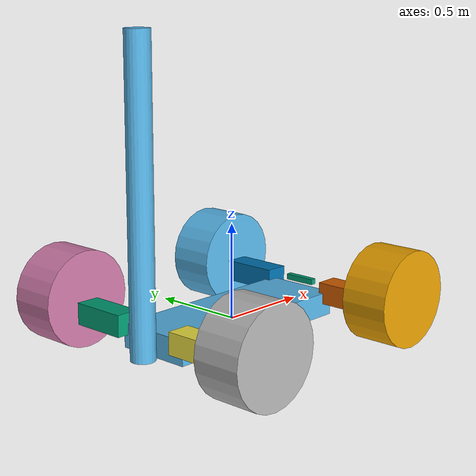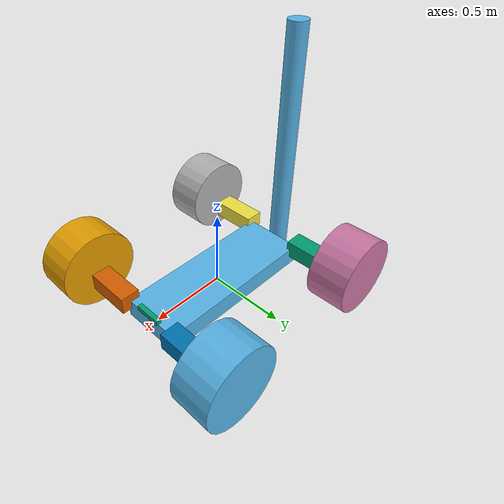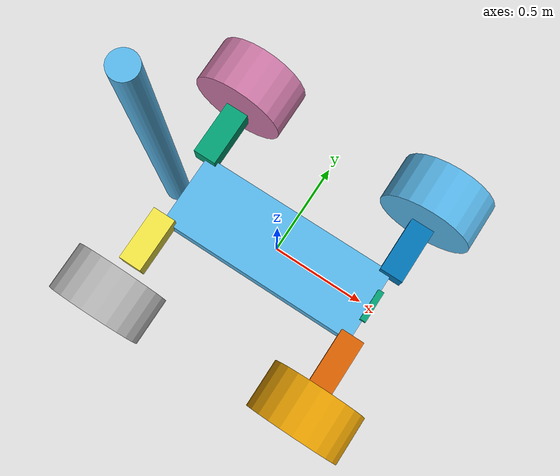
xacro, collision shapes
<?xml version='1.0'?>

<!-- choose a name space and start xacro -->
<robot name="auto_mode" xmlns:xacro="http://www.ros.org/wiki/xacro">

  <!-- Start by including all required xacro files which hold the macros -->
  <xacro:include filename="$(find sim_world)/models/common_models/common_models.xacro" />
  <xacro:include filename="$(find sim_world)/models/auto_mode/auto_mode.gazebo" />
  <xacro:include filename="$(find sim_world)/models/auto_mode/materials.xacro" />
  <xacro:include filename="$(find sim_world)/models/auto_mode/macros.xacro"    />
  <xacro:include filename="$(find sim_world)/models/auto_mode/parameter.xacro" />

  <!-- Add the ZED camera -->
  <link name="zed_cam_link">

    <inertial>
      <mass value="${m_zed_cam}"/>
      <xacro:box_inertia m="${m_zed_cam}" x="${x_zed_cam}" y="${y_zed_cam}" z="${z_zed_cam}"/>
    </inertial>

    <collision name="collision">
      <origin xyz="${x_pose_zed_cam} 0 ${z_pose_zed_cam}" rpy="0 0 ${pi/2}"/>
      <geometry>
        <box size="${x_zed_cam} ${y_zed_cam} ${z_zed_cam}"/>
      </geometry>
    </collision>

    <visual name="zed_cam_visual">
      <origin xyz="${x_pose_zed_cam} 0 ${z_pose_zed_cam}" rpy="0 0 ${pi/2}"/>
      <geometry>
        <box size="${x_zed_cam} ${y_zed_cam} ${z_zed_cam}"/>
      </geometry>
    </visual>

  </link>

  <!-- Fix ZED camera to chassis -->
  <joint type="fixed" name="chassis_to_zed_cam">
    <parent link="chassis_link"/>
    <child link="zed_cam_link"/>
  </joint>
</robot>

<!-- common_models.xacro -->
<!-- choose a name space and start xacro -->
<robot name="common_models" xmlns:xacro="http://www.ros.org/wiki/xacro">

  <!-- Start by including all required xacro files which hold the macros -->
  <xacro:include filename="$(find sim_world)/models/common_models/common_models.gazebo" />
  <xacro:include filename="$(find sim_world)/models/common_models/materials.xacro" />
  <xacro:include filename="$(find sim_world)/models/common_models/macros.xacro"    />
  <xacro:include filename="$(find sim_world)/models/common_models/parameter.xacro" />

 <!-- Create a dummy link as base link -->
  <link name='base_link'>
    <pose>0 0 0 0 0 0</pose>
  </link>
  <joint type="fixed" name="base_link_to_chassis">
    <child link="chassis_link"/>
    <parent link="base_link"/>
  </joint>

  <!-- Define the chassis of the differential drive robot, which is our base -->
  <link name='chassis_link'>
    <pose>0 0 0 0 0 0</pose>
    <!-- Define inertial system for the chassis -->
    <inertial>
      <mass value="${m_chassis}"/>
      <xacro:box_inertia m="${m_chassis}" x="${x_chassis}" y="${y_chassis}" z="${z_chassis}"/>
    </inertial>
    <!-- Define collision sorrounding box -->
    <collision name='collision'>
      <origin xyz="0 0 0" rpy=" 0 0 0"/>
      <geometry>
        <box size="${x_chassis} ${y_chassis} ${z_chassis}"/>
      </geometry>
    </collision>
    <!-- Define visualization structure -->
    <visual name='base_link_visual'>
	  <origin xyz="0 0 0" rpy=" 0 0 0"/>
      <geometry>
        <mesh filename="package://sim_world/meshes/chassis-w-baseplate.dae"/>
      </geometry>
    </visual>

    <!-- Add the caster wheel! Here we simply assume complete slippage, thus we do not require that it rotates! -->

    <!-- Add antenna to the rover -->
    <collision name="antenna">
      <origin xyz="${-x_chassis/2-r_antenna} 0 ${l_antenna/2-z_chassis/2}" rpy="0 0 0"/>
      <geometry>
        <cylinder radius="${r_antenna}" length="${l_antenna}"/>
      </geometry>
    </collision>

    <visual name="antenna_visual">
      <origin xyz="${-x_chassis/2-r_antenna} 0 ${l_antenna/2-z_chassis/2}" rpy="0 0 0"/>
      <geometry>
        <cylinder radius="${r_antenna}" length="${l_antenna}"/>
      </geometry>
    </visual>

  </link>

  <!-- Add legs for the robot -->
  <link name="leg_rl">
    <inertial>
      <mass value="${m_leg}"/>
      <xacro:box_inertia m="${m_leg}" x="${l_leg}" y="${w_leg}" z="${h_leg}"/>
    </inertial>
    <collision name="collision">
      <origin xyz="0 0 0" rpy="0 0 ${pi/2}"/>
      <geometry>
        <box size="${l_leg} ${w_leg} ${h_leg}"/>
      </geometry>
    </collision>
    <visual name="leg_rl_visual">
      <origin xyz="0 0 0" rpy="0 0 ${pi/2}"/>
      <geometry>
        <mesh filename="package://sim_world/meshes/tr_leg.dae"/>
      </geometry>
    </visual>
  </link>

  <link name="leg_rr">
    <inertial>
      <mass value="${m_leg}"/>
      <xacro:box_inertia m="${m_leg}" x="${l_leg}" y="${w_leg}" z="${h_leg}"/>
    </inertial>
    <collision name="collision">
      <origin xyz="0 0 0" rpy="0 0 ${pi/2}"/>
      <geometry>
        <box size="${l_leg} ${w_leg} ${h_leg}"/>
      </geometry>
    </collision>
    <visual name="leg_rr_visual">
      <origin xyz="0 0 0" rpy="0 0 ${pi/2}"/>
      <geometry>
        <mesh filename="package://sim_world/meshes/tr_leg.dae"/>
      </geometry>
    </visual>
  </link>

  <link name="leg_fl">
    <inertial>
      <mass value="${m_leg}"/>
      <xacro:box_inertia m="${m_leg}" x="${l_leg}" y="${w_leg}" z="${h_leg}"/>
    </inertial>
    <collision name="collision">
      <origin xyz="0 0 0" rpy="0 0 ${pi/2}"/>
      <geometry>
        <box size="${l_leg} ${w_leg} ${h_leg}"/>
      </geometry>
    </collision>
    <visual name="leg_fl_visual">
      <origin xyz="0 0 0" rpy="0 0 ${pi/2}"/>
      <geometry>
        <mesh filename="package://sim_world/meshes/Control_armsFL.dae"/>
      </geometry>
    </visual>
  </link>

  <link name="leg_fr">
    <inertial>
      <mass value="${m_leg}"/>
      <xacro:box_inertia m="${m_leg}" x="${l_leg}" y="${w_leg}" z="${h_leg}"/>
    </inertial>
    <collision name="collision">
      <origin xyz="0 0 0" rpy="0 0 ${pi/2}"/>
      <geometry>
        <box size="${l_leg} ${w_leg} ${h_leg}"/>
      </geometry>
    </collision>
    <visual name="leg_fr_visual">
      <origin xyz="0 0 0" rpy="0 0 ${pi/2}"/>
      <geometry>
        <mesh filename="package://sim_world/meshes/Control_armsFRv2.dae"/>
      </geometry>
    </visual>
  </link>

  <!-- Add the wheels for the robot -->
  <link name="wheel_rl">
    <collision name="collision">
      <origin xyz="0 0 0" rpy="0 ${pi/2} ${pi/2}"/>
      <geometry>
        <cylinder radius="${r_wheel}" length="${h_wheel}"/>
      </geometry>
      <surface>
        <friction>
          <ode>
            <mu>1.0</mu>
            <mu2>1.0</mu2>
            <slip1>0.0</slip1>
            <slip2>0.0</slip2>
          </ode>
        </friction>
      </surface>
    </collision>
    <visual name="wheel_rl_visual">
      <origin xyz="0 0 0" rpy="0 ${pi/2} ${pi/2}"/>
      <geometry>
        <mesh filename="package://sim_world/meshes/tr_wheel_left.dae"/>
      </geometry>
    </visual>
    <inertial>
      <origin xyz="0 0 0" rpy="0 ${pi/2} ${pi/2}"/>
      <mass value="${m_wheel}"/>
      <cylinder_inertia m="${m_wheel}" r="${r_wheel}" h="${h_wheel}"/>
      <xacro:cylinder_inertia m="${m_wheel}" r="${r_wheel}" h="${h_wheel}"/>
    </inertial>
  </link>

  <link name="wheel_rr">
    <collision name="collision">
      <origin xyz="0 0 0" rpy="0 ${pi/2} ${pi/2}"/>
      <geometry>
        <cylinder radius="${r_wheel}" length="${h_wheel}"/>
      </geometry>
      <surface>
        <friction>
          <ode>
            <mu>1.0</mu>
            <mu2>1.0</mu2>
            <slip1>0.0</slip1>
            <slip2>0.0</slip2>
          </ode>
        </friction>
      </surface>
    </collision>
    <visual name="wheel_rr_visual">
      <origin xyz="0 0 0" rpy="0 ${pi/2} ${pi/2}"/>
      <geometry>
        <mesh filename="package://sim_world/meshes/tr_wheel_right.dae"/>
      </geometry>
    </visual>
    <inertial>
      <origin xyz="0 0 0" rpy="0 ${pi/2} ${pi/2}"/>
      <mass value="${m_wheel}"/>
      <cylinder_inertia m="${m_wheel}" r="${r_wheel}" h="${h_wheel}"/>
      <xacro:cylinder_inertia m="${m_wheel}" r="${r_wheel}" h="${h_wheel}"/>
    </inertial>
  </link>

  <link name="wheel_fr">
    <collision name="collision">
      <origin xyz="0 0 0" rpy="0 ${pi/2} ${pi/2}"/>
      <geometry>
        <cylinder radius="${r_wheel}" length="${h_wheel}"/>
      </geometry>
      <surface>
        <friction>
          <ode>
            <mu>1.0</mu>
            <mu2>1.0</mu2>
            <slip1>0.0</slip1>
            <slip2>0.0</slip2>
          </ode>
        </friction>
      </surface>
    </collision>
    <visual name="wheel_fr_visual">
      <origin xyz="0 0 0" rpy="0 ${pi/2} ${pi/2}"/>
      <geometry>
        <mesh filename="package://sim_world/meshes/tr_wheel_right.dae"/>
      </geometry>
    </visual>
    <inertial>
      <origin xyz="0 0 0" rpy="0 ${pi/2} ${pi/2}"/>
      <mass value="${m_wheel}"/>
      <cylinder_inertia m="${m_wheel}" r="${r_wheel}" h="${h_wheel}"/>
      <xacro:cylinder_inertia m="${m_wheel}" r="${r_wheel}" h="${h_wheel}"/>
    </inertial>
  </link>

  <link name="wheel_fl">
    <collision name="collision">
      <origin xyz="0 0 0" rpy="0 ${pi/2} ${pi/2}"/>
      <geometry>
        <cylinder radius="${r_wheel}" length="${h_wheel}"/>
      </geometry>
      <surface>
        <friction>
          <ode>
            <mu>1.0</mu>
            <mu2>1.0</mu2>
            <slip1>0.0</slip1>
            <slip2>0.0</slip2>
          </ode>
        </friction>
      </surface>
    </collision>
    <visual name="wheel_fl_visual">
      <origin xyz="0 0 0" rpy="0 ${pi/2} ${pi/2}"/>
      <geometry>
        <mesh filename="package://sim_world/meshes/tr_wheel_left.dae"/>
      </geometry>
    </visual>
    <inertial>
      <origin xyz="0 0 0" rpy="0 ${pi/2} ${pi/2}"/>
      <mass value="${m_wheel}"/>
      <cylinder_inertia m="${m_wheel}" r="${r_wheel}" h="${h_wheel}"/>
      <xacro:cylinder_inertia m="${m_wheel}" r="${r_wheel}" h="${h_wheel}"/>
    </inertial>
  </link>

  <!-- Set joints for the wheels which can be controlled over ROS -->
  <!-- it is continuous since it is a wheel-->
  <joint type="continuous" name="leg_rl_joint_wheel_rl">
    <origin xyz="0 ${l_leg/2+h_wheel/2} ${r_wheel/2-z_chassis/2}" rpy="0 0 0"/>
    <child link="wheel_rl"/>
    <parent link="leg_rl"/>
    <axis xyz="0 1 0" rpy="0 0 0"/>
    <!-- velocity here is the max allowed velocity not the acutal velocity-->
    <limit effort="100" velocity="100"/>
    <joint_properties damping="0.0" friction="0.0"/>
  </joint>
  <joint type="continuous" name="leg_rr_joint_wheel_rr">
    <origin xyz="0 ${-y_chassis/2-h_wheel/2} ${r_wheel/2-z_chassis/2}" rpy="0 0 0"/>
    <child link="wheel_rr"/>
    <parent link="leg_rr"/>
    <axis xyz="0 1 0" rpy="0 0 0"/>
    <limit effort="100" velocity="100"/>
    <joint_properties damping="0.0" friction="0.0"/>
  </joint>
  <joint type="continuous" name="leg_fr_joint_wheel_fr">
    <origin xyz="0 ${-l_leg/2-h_wheel/2} ${r_wheel/2-z_chassis/2}" rpy="0 0 0"/>
    <child link="wheel_fr"/>
    <parent link="leg_fr"/>
    <axis xyz="0 1 0" rpy="0 0 0"/>
    <limit effort="100" velocity="100"/>
    <joint_properties damping="0.0" friction="0.0"/>
  </joint>
  <joint type="continuous" name="leg_fl_joint_wheel_fl">
    <origin xyz="0 ${l_leg/2+h_wheel/2} ${r_wheel/2-z_chassis/2}" rpy="0 0 0"/>
    <child link="wheel_fl"/>
    <parent link="leg_fl"/>
    <axis xyz="0 1 0" rpy="0 0 0"/>
    <limit effort="100" velocity="100"/>
    <joint_properties damping="0.0" friction="0.0"/>
  </joint>

   <joint type="revolute" name="chassis_link_joint_leg_rl">
    <origin xyz="${-wheel_dist_center} ${y_chassis/2+h_wheel/2} ${r_wheel/2-z_chassis/2}" rpy="0 0 0"/>
    <child link="leg_rl"/>
    <parent link="chassis_link"/>
    <axis xyz="0 1 0" rpy="0 0 0"/>
    <limit effort="100" velocity="100"/>
    <joint_properties damping="0.0" friction="0.0"/>
  </joint>
  <joint type="revolute" name="chassis_link_joint_leg_rr">
    <origin xyz="${-wheel_dist_center} ${-y_chassis/2-h_wheel/2} ${r_wheel/2-z_chassis/2}" rpy="0 0 0"/>
    <child link="leg_rr"/>
    <parent link="chassis_link"/>
    <axis xyz="0 1 0" rpy="0 0 0"/>
    <limit effort="100" velocity="100"/>
    <joint_properties damping="0.0" friction="0.0"/>
  </joint>
  <joint type="revolute" name="chassis_link_joint_leg_fl">
    <origin xyz="${wheel_dist_center} ${y_chassis/2+h_wheel/2} ${r_wheel/2-z_chassis/2}" rpy="0 0 0"/>
    <child link="leg_fl"/>
    <parent link="chassis_link"/>
    <axis xyz="0 1 0" rpy="0 0 0"/>
    <limit effort="100" velocity="100"/>
    <joint_properties damping="0.0" friction="0.0"/>
  </joint>
  <joint type="revolute" name="chassis_link_joint_leg_fr">
    <origin xyz="${wheel_dist_center} ${-y_chassis/2-h_wheel/2} ${r_wheel/2-z_chassis/2}" rpy="0 0 0"/>
    <child link="leg_fr"/>
    <parent link="chassis_link"/>
    <axis xyz="0 1 0" rpy="0 0 0"/>
    <limit effort="100" velocity="100"/>
    <joint_properties damping="0.0" friction="0.0"/>
  </joint>
</robot>

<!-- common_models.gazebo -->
<robot xmlns:xacro="http://www.ros.org/wiki/xacro">
  <xacro:include filename="$(find sim_world)/models/common_models/parameter.xacro" />

  <!-- TODO: Add same update rates over parameter setting and define all parameters in config -->
  <!-- Differential Drive controller from Gazebo, TODO: Add noise by adapting the plugin -->
  <gazebo>
    <plugin name="differential_drive_controller" filename="libgazebo_ros_diff_drive.so">
      <alwaysOn>true</alwaysOn>
      <!-- the buad rate is 20 hz-->
      <updateRate>20</updateRate>
      <leftJoint>leg_rl_joint_wheel_rl</leftJoint>
      <rightJoint>leg_rr_joint_wheel_rr</rightJoint>
      <wheelSeparation>${h_wheel+l_leg*2+y_chassis}</wheelSeparation>
      <wheelDiameter>${r_wheel*2}</wheelDiameter>
      <wheelTorque>${torque_wheel}</wheelTorque>
      <commandTopic>/cmd_vel</commandTopic>
      <odometryTopic>odom</odometryTopic>
      <odometryFrame>odom_link</odometryFrame>
      <robotBaseFrame>base_link</robotBaseFrame>
      <legacyMode>false</legacyMode>
    </plugin>
  </gazebo>

  <!-- Paint the robot -->
  <gazebo reference="base_link">
    <material>Gazebo/Orange</material>
  </gazebo>
</robot>

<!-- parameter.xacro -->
<robot xmlns:xacro="http://www.ros.org/wiki/xacro">

  <!-- Define parameter for the differential drive robot -->
  <!-- Parameter for the chassis, size [m] and mass [kg] -->
  <xacro:property name="x_chassis" value="1.1176" />
  <xacro:property name="y_chassis" value="0.4064" />
  <xacro:property name="z_chassis" value="0.127" />
  <xacro:property name="m_chassis" value="10.0" />

  <!-- Parameter for the wheels, radius [m], height [m], mass [kg], torque [Nm], wheelbase [m] -->
  <xacro:property name="r_wheel" value="0.254"/>
  <xacro:property name="h_wheel" value="0.254" />
  <xacro:property name="m_wheel" value="3.0" />
  <xacro:property name="torque_wheel" value="10" />
  <xacro:property name="L_wheel" value="0.1788" />
  <xacro:property name="wheel_dist_center" value="0.5588" />

  <!-- Parameter for the legs, length [m], width [m], height [m], mass [kg]-->
  <xacro:property name="l_leg" value="0.3048" />
  <xacro:property name="w_leg" value="0.1270" />
  <xacro:property name="h_leg" value="0.1143" />
  <xacro:property name="m_leg" value="2.0" />

  <!-- Parameter for the antenna, radius [m], length [m] -->
  <xacro:property name="r_antenna" value="0.0635" />
  <xacro:property name="l_antenna" value="1.5748" />

</robot>

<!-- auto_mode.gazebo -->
<robot xmlns:xacro="http://www.ros.org/wiki/xacro">
  <xacro:include filename="$(find sim_world)/models/auto_mode/parameter.xacro" />

  <gazebo reference="zed_cam_link">

    <sensor type="multicamera" name="zed_cam_sensor">
      <!-- TODO: Change from ZED to mini ZED -->
      <!-- See for specs: https://www.stereolabs.com/zed/ -->

      <update_rate>${fps_zed_cam}</update_rate>

      <camera name="zed_cam_left">
        <pose>${x_pose_zed_cam} ${l_r_sep_zed_cam} ${z_pose_zed_cam} 0 0 0</pose>

        <!-- 90deg (H) x 60deg (V) x 100deg (D) max. -->
        <horizontal_fov>${fov_h_zed_cam}</horizontal_fov>

        <image>
          <width>${out_wd_zed_cam}</width>
          <height>${out_ht_zed_cam}</height>
          <format>R8G8B8</format>
        </image>

        <!-- depth range: 0.3 - 25 m (0.98 to 82 ft)-->
        <clip>
          <near>${dep_min_zed_cam}</near>
          <far>${dep_max_zed_cam}</far>
        </clip>

        <!-- TODO: still default from tutorial -->
        <noise>
          <type>gaussian</type>
          <mean>0.0</mean>
          <stddev>0.007</stddev>
        </noise>
      </camera>

      <camera name="zed_cam_right">
        <pose>${x_pose_zed_cam} ${-l_r_sep_zed_cam} ${z_pose_zed_cam} 0 0 0</pose>

        <!-- 90deg (H) x 60deg (V) x 100deg (D) max. -->
        <horizontal_fov>${fov_h_zed_cam}</horizontal_fov>

        <image>
          <width>${out_wd_zed_cam}</width>
          <height>${out_ht_zed_cam}</height>
          <format>R8G8B8</format>
        </image>

        <!-- depth range: 0.3 - 25 m (0.98 to 82 ft)-->
        <clip>
          <near>${dep_min_zed_cam}</near>
          <far>${dep_max_zed_cam}</far>
        </clip>

        <!-- TODO: still default from tutorial -->
        <noise>
          <type>gaussian</type>
          <mean>0.0</mean>
          <stddev>0.007</stddev>
        </noise>
      </camera>

      <!-- TODO: still default from tutorial -->
      <plugin name="zed_cam_controller" filename="libgazebo_ros_multicamera.so">
        <alwaysOn>true</alwaysOn>
        <updateRate>0.0</updateRate>
        <cameraName>zed_cam</cameraName>
        <imageTopicName>image_raw</imageTopicName>
        <cameraInfoTopicName>camera_info</cameraInfoTopicName>
        <frameName>zed_cam_optical_frame</frameName>
        <hackBaseline>0.07</hackBaseline>
        <distortionK1>0.0</distortionK1>
        <distortionK2>0.0</distortionK2>
        <distortionK3>0.0</distortionK3>
        <distortionT1>0.0</distortionT1>
        <distortionT2>0.0</distortionT2>
      </plugin>
    </sensor>
  </gazebo>
</robot>

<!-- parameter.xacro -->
<robot xmlns:xacro="http://www.ros.org/wiki/xacro">
  <!-- Define parameter for the autonomous subsystem -->

  <!-- TODO: Apart from separation, all values need to be changed from ZED cam to ZED mini -->
  <!-- Parameters for ZED camera. See: https://www.stereolabs.com/zed/ -->

  <!-- Origin (these values are temporary until I find out more about how it's mounted) -->
  <xacro:property name="x_pose_zed_cam" value="${x_chassis/2}" />
  <xacro:property name="y_pose_zed_cam" value="0" />
  <xacro:property name="z_pose_zed_cam" value="${(z_chassis/2)+z_zed_cam}" />

  <!-- Physical parameters: xyz [m] and mass [kg] -->
  <xacro:property name="x_zed_cam" value="0.175" />
  <xacro:property name="y_zed_cam" value="0.033" />
  <xacro:property name="z_zed_cam" value="0.030" />
  <xacro:property name="m_zed_cam" value="0.135" />

  <!-- depth range: 0.3 - 25 m (0.98 to 82 ft) -->
  <xacro:property name="min_depth_zed_cam" value="0.3" />
  <xacro:property name="max_depth_zed_cam" value="25.0" />

  <xacro:property name="fps_zed_cam" value="30" />
  <xacro:property name="out_wd_zed_cam" value="3840" />
  <xacro:property name="out_ht_zed_cam" value="1080" />

  <!-- 90deg (H) x 60deg (V) x 100deg (D) max. -->
  <xacro:property name="fov_h_zed_cam" value="${pi/2}" />
  <xacro:property name="fov_v_zed_cam" value="${pi/3}" />

  <!-- depth range: 0.3 - 25 m (0.98 to 82 ft)-->
  <xacro:property name="dep_min_zed_cam" value="0.3" />
  <xacro:property name="dep_max_zed_cam" value="25.0" />

  <!-- separation between left and right sensors -->
  <xacro:property name="l_r_sep_zed_cam" value="0.063" />

</robot>
